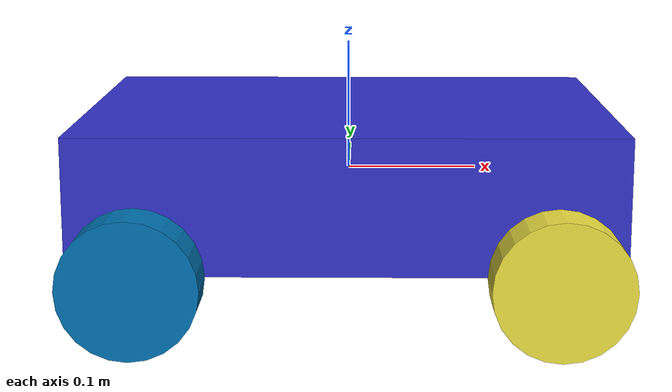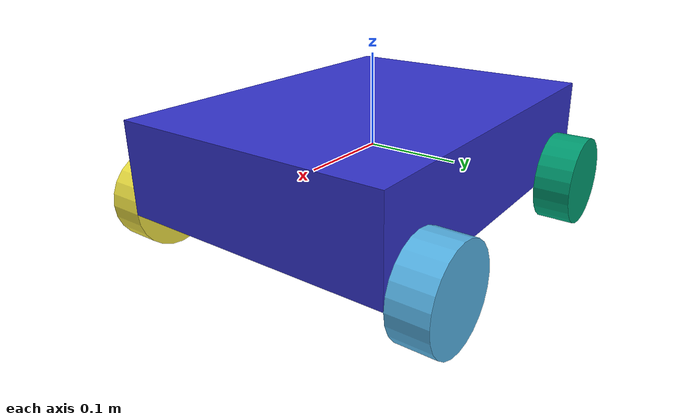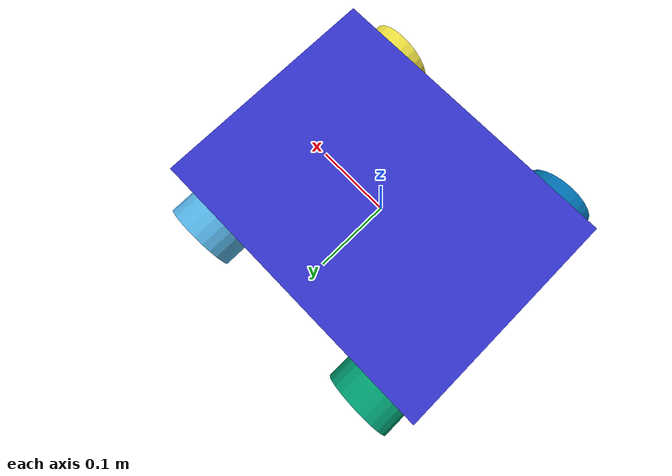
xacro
<?xml version="1.0"?>
<robot name="panai_robot" xmlns:xacro="http://www.ros.org/wiki/xacro">
  <material name="blue">
    <color rgba="0.2 0.2 0.8 1"/>
  </material>

  <link name="base_link">
    <visual>
      <geometry>
        <box size="0.4 0.3 0.1"/>
      </geometry>
      <material name="blue"/>
    </visual>
    <collision>
      <geometry>
        <box size="0.4 0.3 0.1"/>
      </geometry>
    </collision>
    <inertial>
      <mass value="5.0"/>
      <inertia ixx="0.05" ixy="0" ixz="0" iyy="0.08" iyz="0" izz="0.1"/>
    </inertial>
  </link>

  <xacro:macro name="wheel" params="name x y">
    <link name="${name}_link">
      <visual>
        <geometry>
          <cylinder radius="0.05" length="0.04"/>
        </geometry>
      </visual>
      <collision>
        <geometry>
          <cylinder radius="0.05" length="0.04"/>
        </geometry>
      </collision>
      <inertial>
        <mass value="0.5"/>
        <inertia ixx="0.001" ixy="0" ixz="0" iyy="0.001" iyz="0" izz="0.001"/>
      </inertial>
    </link>
    <joint name="${name}_joint" type="continuous">
      <parent link="base_link"/>
      <child link="${name}_link"/>
      <origin xyz="${x} ${y} -0.05" rpy="1.570796 0 0"/>
      <axis xyz="0 0 1"/>
    </joint>
  </xacro:macro>

  <xacro:wheel name="front_left_wheel" x="0.15" y="0.17"/>
  <xacro:wheel name="rear_left_wheel" x="-0.15" y="0.17"/>
  <xacro:wheel name="front_right_wheel" x="0.15" y="-0.17"/>
  <xacro:wheel name="rear_right_wheel" x="-0.15" y="-0.17"/>

  <!-- Точки крепления датчиков -->
  <link name="camera_link"/>
  <joint name="camera_joint" type="fixed">
    <parent link="base_link"/>
    <child link="camera_link"/>
    <origin xyz="0.2 0 0.1"/>
  </joint>

  <link name="laser_link"/>
  <joint name="laser_joint" type="fixed">
    <parent link="base_link"/>
    <child link="laser_link"/>
    <origin xyz="0.2 0 0.05"/>
  </joint>

  <link name="acoustic_link"/>
  <joint name="acoustic_joint" type="fixed">
    <parent link="base_link"/>
    <child link="acoustic_link"/>
    <origin xyz="-0.1 0.15 -0.05"/>
  </joint>

  <gazebo>
    <plugin filename="gz-sim-diff-drive-system" name="gz::sim::systems::DiffDrive">
      <left_joint>front_left_wheel_joint</left_joint>
      <left_joint>rear_left_wheel_joint</left_joint>
      <right_joint>front_right_wheel_joint</right_joint>
      <right_joint>rear_right_wheel_joint</right_joint>
      <wheel_separation>0.34</wheel_separation>
      <wheel_radius>0.05</wheel_radius>
      <odom_publish_frequency>50</odom_publish_frequency>
      <topic>/cmd_vel</topic>
      <odom_topic>/odom</odom_topic>
      <tf_topic>/tf</tf_topic>
      <frame_id>odom</frame_id>
      <child_frame_id>base_link</child_frame_id>
    </plugin>
  </gazebo>
</robot>
